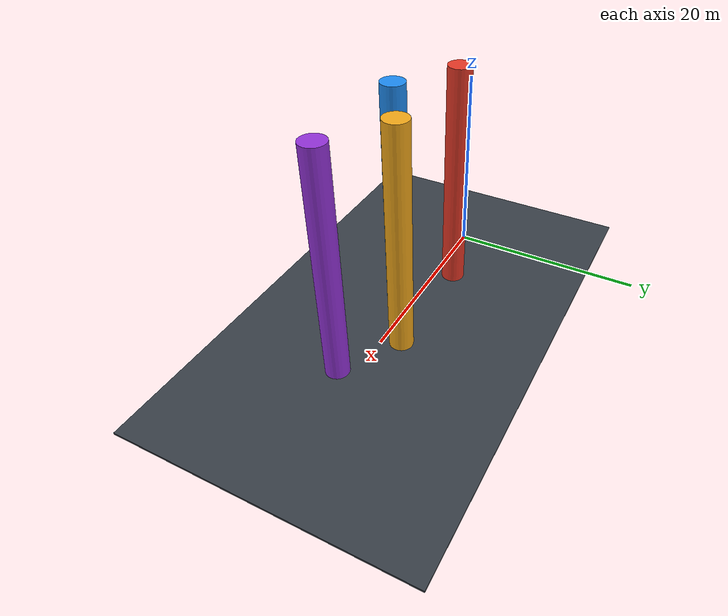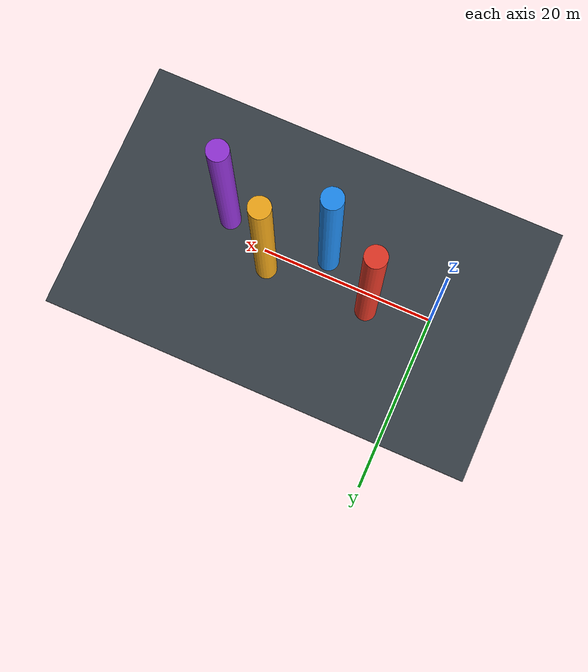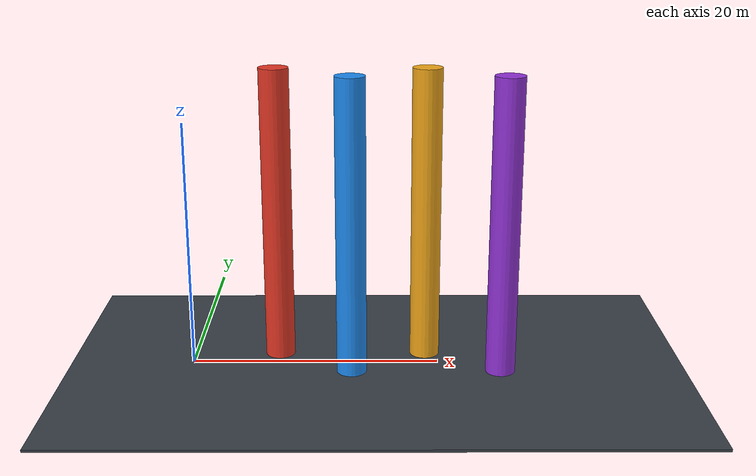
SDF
<sdf version="1.9">
 <world name="iris_mppi_slalom">
  <physics name="1ms" type="ignore">
   <max_step_size>0.001</max_step_size>
   <real_time_factor>1.0</real_time_factor>
  </physics>
  <plugin filename="gz-sim-physics-system" name="gz::sim::systems::Physics"/>
  <plugin filename="gz-sim-sensors-system" name="gz::sim::systems::Sensors">
   <render_engine>ogre2</render_engine>
  </plugin>
  <plugin filename="gz-sim-user-commands-system" name="gz::sim::systems::UserCommands"/>
  <plugin filename="gz-sim-scene-broadcaster-system" name="gz::sim::systems::SceneBroadcaster"/>
  <plugin filename="gz-sim-imu-system" name="gz::sim::systems::Imu"/>
  <plugin filename="gz-sim-magnetometer-system" name="gz::sim::systems::Magnetometer"/>
  <plugin filename="gz-sim-air-pressure-system" name="gz::sim::systems::AirPressure"/>
  <plugin filename="gz-sim-navsat-system" name="gz::sim::systems::NavSat"/>
  <spherical_coordinates>
   <surface_model>EARTH_WGS84</surface_model>
   <latitude_deg>-35.363262</latitude_deg>
   <longitude_deg>149.165237</longitude_deg>
   <elevation>584</elevation>
   <heading_deg>0</heading_deg>
  </spherical_coordinates>
  <magnetic_field>2.1e-5 5.0e-6 -4.2e-5</magnetic_field>
  <scene><ambient>0.45 0.45 0.45 1</ambient><background>0.08 0.1 0.14 1</background><grid>true</grid></scene>
  <light type="directional" name="sun">
   <pose>0 0 40 0 0 0</pose>
   <diffuse>0.9 0.9 0.9 1</diffuse>
   <direction>-0.4 0.2 -1</direction>
  </light>
  <model name="ground">
   <static>true</static>
   <pose>15 0 -0.1 0 0 0</pose>
   <link name="link">
    <collision name="collision"><geometry><box><size>50 30 0.2</size></box></geometry></collision>
    <visual name="visual">
     <geometry><box><size>50 30 0.2</size></box></geometry>
     <material><ambient>0.16 0.18 0.2 1</ambient><diffuse>0.22 0.25 0.28 1</diffuse></material>
    </visual>
   </link>
  </model>
  <model name="slalom_1">
   <static>true</static>
   <pose>7 1.8 12 0 0 0</pose>
   <link name="link">
    <collision name="collision">
     <geometry><cylinder><radius>1.2</radius><length>24</length></cylinder></geometry>
    </collision>
    <visual name="visual">
     <geometry><cylinder><radius>1.2</radius><length>24</length></cylinder></geometry>
     <material><ambient>0.8 0.18 0.12 1</ambient><diffuse>0.9 0.22 0.15 1</diffuse></material>
    </visual>
   </link>
  </model>
  <model name="slalom_2">
   <static>true</static>
   <pose>13 -1.8 12 0 0 0</pose>
   <link name="link">
    <collision name="collision">
     <geometry><cylinder><radius>1.2</radius><length>24</length></cylinder></geometry>
    </collision>
    <visual name="visual">
     <geometry><cylinder><radius>1.2</radius><length>24</length></cylinder></geometry>
     <material><ambient>0.1 0.45 0.8 1</ambient><diffuse>0.12 0.55 0.95 1</diffuse></material>
    </visual>
   </link>
  </model>
  <model name="slalom_3">
   <static>true</static>
   <pose>19 1.8 12 0 0 0</pose>
   <link name="link">
    <collision name="collision">
     <geometry><cylinder><radius>1.2</radius><length>24</length></cylinder></geometry>
    </collision>
    <visual name="visual">
     <geometry><cylinder><radius>1.2</radius><length>24</length></cylinder></geometry>
     <material><ambient>0.8 0.55 0.08 1</ambient><diffuse>0.95 0.66 0.1 1</diffuse></material>
    </visual>
   </link>
  </model>
  <model name="slalom_4">
   <static>true</static>
   <pose>25 -1.8 12 0 0 0</pose>
   <link name="link">
    <collision name="collision">
     <geometry><cylinder><radius>1.2</radius><length>24</length></cylinder></geometry>
    </collision>
    <visual name="visual">
     <geometry><cylinder><radius>1.2</radius><length>24</length></cylinder></geometry>
     <material><ambient>0.48 0.15 0.7 1</ambient><diffuse>0.58 0.2 0.85 1</diffuse></material>
    </visual>
   </link>
  </model>
 </world>
</sdf>
